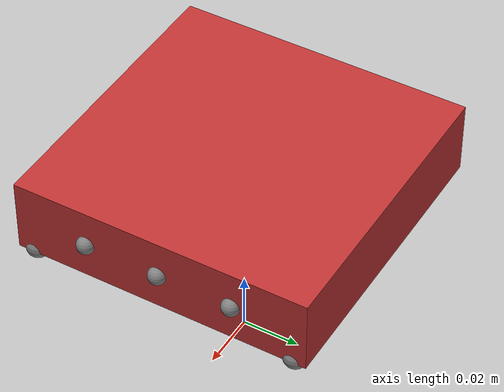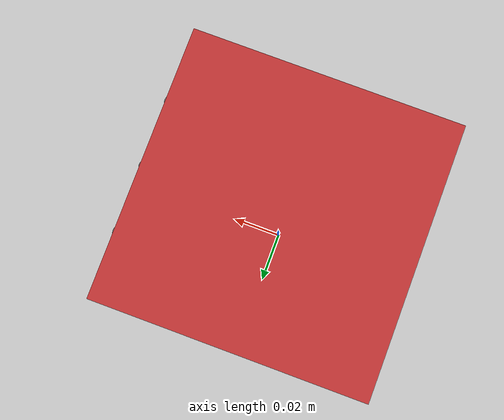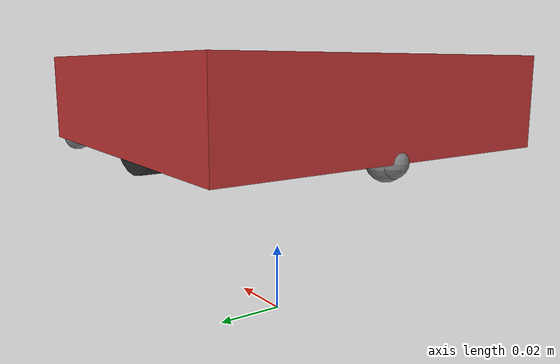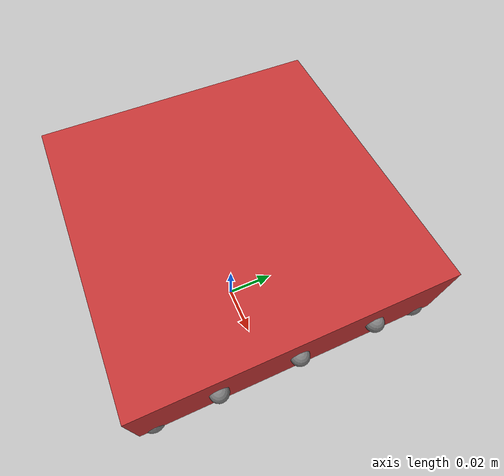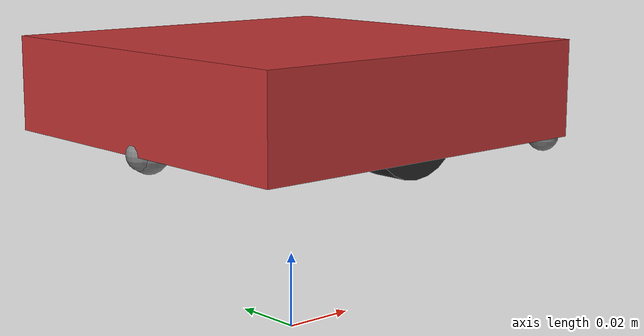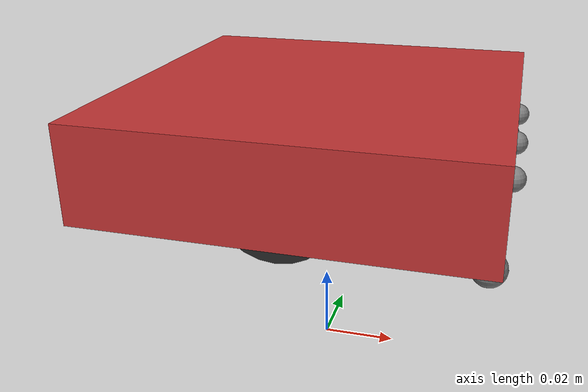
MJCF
<mujoco model="enemy">
  <!--
    Enemy robot: same dimensions as sumobot by default.
    Configurable mass, size, speed via scene assembly.
  -->

  <default>
    <joint damping="0.0001" armature="0.00001"/>
    <geom condim="4" solimp="0.95 0.99 0.001" solref="0.004 1"/>
  </default>

  <asset>
    <material name="enemy_red" rgba="0.75 0.2 0.2 1"/>
    <material name="enemy_wedge" rgba="0.6 0.15 0.15 1"/>
    <material name="enemy_wheel" rgba="0.15 0.15 0.15 1"/>
  </asset>

  <worldbody>
    <body name="ene_chassis" pos="0 0 0.065">
      <freejoint name="ene_root"/>

      <inertial pos="-0.005 0 -0.003" mass="0.47"
                diaginertia="0.000396 0.000396 0.000784"/>

      <geom name="ene_body" type="box" size="0.05 0.05 0.0125"
            material="enemy_red" friction="0.4 0.005 0.001" mass="0"/>

      <geom name="ene_skid" type="sphere" size="0.005"
            pos="-0.045 0 -0.0125" friction="0.2 0.001 0.001" mass="0.005"/>

      <!-- Sensor sites -->
      <site name="ene_laser_center" pos="0.05 0 0" size="0.003"/>
      <site name="ene_laser_left"   pos="0.05 -0.025 0" euler="0 0 -0.526" size="0.003"/>
      <site name="ene_laser_right"  pos="0.05  0.025 0" euler="0 0  0.526" size="0.003"/>
      <site name="ene_line_fl" pos="0.047 -0.045 -0.0125" size="0.004"/>
      <site name="ene_line_fr" pos="0.047  0.045 -0.0125" size="0.004"/>
      <site name="ene_line_r"  pos="-0.047 0     -0.0125" size="0.004"/>
      <site name="ene_imu" pos="0 0 0" size="0.002"/>

      <body name="ene_wheel_L" pos="0 -0.04 -0.003">
        <joint name="ene_wheel_L_joint" type="hinge" axis="0 1 0"/>
        <geom name="ene_wheel_L_geom" type="cylinder" size="0.015 0.005"
              euler="90 0 0" material="enemy_wheel"
              friction="0.6 0.008 0.002" mass="0.008" condim="4"/>
      </body>

      <body name="ene_wheel_R" pos="0 0.04 -0.003">
        <joint name="ene_wheel_R_joint" type="hinge" axis="0 1 0"/>
        <geom name="ene_wheel_R_geom" type="cylinder" size="0.015 0.005"
              euler="90 0 0" material="enemy_wheel"
              friction="0.6 0.008 0.002" mass="0.008" condim="4"/>
      </body>
    </body>
  </worldbody>

  <actuator>
    <motor name="ene_motor_L" joint="ene_wheel_L_joint"
           ctrlrange="-0.05 0.05" ctrllimited="true"/>
    <motor name="ene_motor_R" joint="ene_wheel_R_joint"
           ctrlrange="-0.05 0.05" ctrllimited="true"/>
  </actuator>

  <sensor>
    <accelerometer name="ene_accel" site="ene_imu"/>
    <gyro name="ene_gyro" site="ene_imu"/>
  </sensor>
</mujoco>
